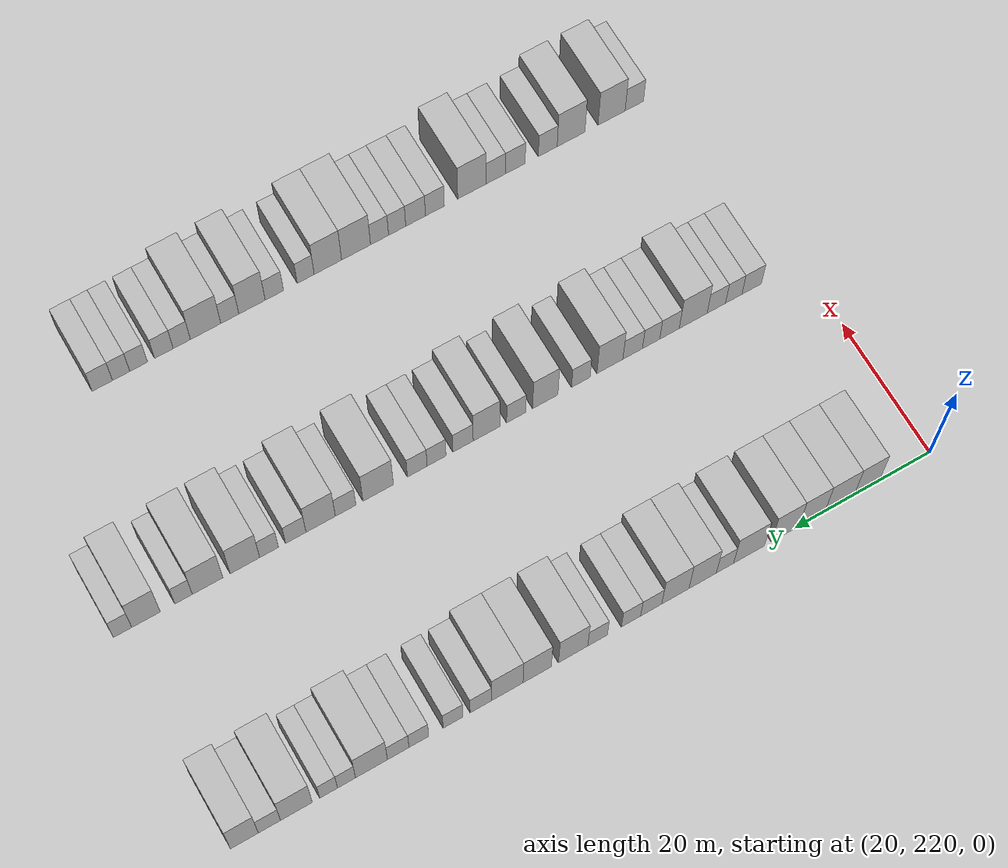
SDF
<sdf version="1.6">
 <world name="default">
  <model name="building_170">
   <static>1</static>
   <pose>25.0000 229.3970 0 0.000000 0.000000 0.000000</pose>
   <link name="link">
    <pose>0 0 4.50 0 0 0</pose>
    <collision name="collision"><geometry><box><size>10.0000 3.7548 9.0000</size></box></geometry></collision>
    <visual name="visual">
     <cast_shadows>0</cast_shadows>
     <geometry><box><size>10.0000 3.7548 9.0000</size></box></geometry>
     <material>
      <script>
       <uri>model://HANNAS_wall/materials/scripts</uri>
       <uri>model://HANNAS_wall/materials/textures</uri>
       <name>vrc/HANNAS_wall</name>
      </script>
     </material>
    </visual>
   </link>
  </model>
  <model name="building_171">
   <static>1</static>
   <pose>25.0000 233.4373 0 0.000000 0.000000 0.000000</pose>
   <link name="link">
    <pose>0 0 4.50 0 0 0</pose>
    <collision name="collision"><geometry><box><size>10.0000 4.3258 9.0000</size></box></geometry></collision>
    <visual name="visual">
     <cast_shadows>0</cast_shadows>
     <geometry><box><size>10.0000 4.3258 9.0000</size></box></geometry>
     <material>
      <script>
       <uri>model://HANNAS_wall/materials/scripts</uri>
       <uri>model://HANNAS_wall/materials/textures</uri>
       <name>vrc/HANNAS_wall</name>
      </script>
     </material>
    </visual>
   </link>
  </model>
  <model name="building_172">
   <static>1</static>
   <pose>25.0000 237.5197 0 0.000000 0.000000 0.000000</pose>
   <link name="link">
    <pose>0 0 4.50 0 0 0</pose>
    <collision name="collision"><geometry><box><size>10.0000 3.8388 9.0000</size></box></geometry></collision>
    <visual name="visual">
     <cast_shadows>0</cast_shadows>
     <geometry><box><size>10.0000 3.8388 9.0000</size></box></geometry>
     <material>
      <script>
       <uri>model://HANNAS_wall/materials/scripts</uri>
       <uri>model://HANNAS_wall/materials/textures</uri>
       <name>vrc/HANNAS_wall</name>
      </script>
     </material>
    </visual>
   </link>
  </model>
  <model name="building_173">
   <static>1</static>
   <pose>25.0000 241.4638 0 0.000000 0.000000 0.000000</pose>
   <link name="link">
    <pose>0 0 4.50 0 0 0</pose>
    <collision name="collision"><geometry><box><size>10.0000 4.0494 9.0000</size></box></geometry></collision>
    <visual name="visual">
     <cast_shadows>0</cast_shadows>
     <geometry><box><size>10.0000 4.0494 9.0000</size></box></geometry>
     <material>
      <script>
       <uri>model://HANNAS_wall/materials/scripts</uri>
       <uri>model://HANNAS_wall/materials/textures</uri>
       <name>vrc/HANNAS_wall</name>
      </script>
     </material>
    </visual>
   </link>
  </model>
  <model name="building_174">
   <static>1</static>
   <pose>25.0000 246.7360 0 0.000000 0.000000 0.000000</pose>
   <link name="link">
    <pose>0 0 4.50 0 0 0</pose>
    <collision name="collision"><geometry><box><size>10.0000 4.4951 9.0000</size></box></geometry></collision>
    <visual name="visual">
     <cast_shadows>0</cast_shadows>
     <geometry><box><size>10.0000 4.4951 9.0000</size></box></geometry>
     <material>
      <script>
       <uri>model://HANNAS_wall/materials/scripts</uri>
       <uri>model://HANNAS_wall/materials/textures</uri>
       <name>vrc/HANNAS_wall</name>
      </script>
     </material>
    </visual>
   </link>
  </model>
  <model name="building_175">
   <static>1</static>
   <pose>25.0000 250.2356 0 0.000000 0.000000 0.000000</pose>
   <link name="link">
    <pose>0 0 3.00 0 0 0</pose>
    <collision name="collision"><geometry><box><size>10.0000 2.5039 6.0000</size></box></geometry></collision>
    <visual name="visual">
     <cast_shadows>0</cast_shadows>
     <geometry><box><size>10.0000 2.5039 6.0000</size></box></geometry>
     <material>
      <script>
       <uri>model://HANNAS_wall/materials/scripts</uri>
       <uri>model://HANNAS_wall/materials/textures</uri>
       <name>vrc/HANNAS_wall</name>
      </script>
     </material>
    </visual>
   </link>
  </model>
  <model name="building_176">
   <static>1</static>
   <pose>25.0000 253.4740 0 0.000000 0.000000 0.000000</pose>
   <link name="link">
    <pose>0 0 4.50 0 0 0</pose>
    <collision name="collision"><geometry><box><size>10.0000 3.9730 9.0000</size></box></geometry></collision>
    <visual name="visual">
     <cast_shadows>0</cast_shadows>
     <geometry><box><size>10.0000 3.9730 9.0000</size></box></geometry>
     <material>
      <script>
       <uri>model://HANNAS_wall/materials/scripts</uri>
       <uri>model://HANNAS_wall/materials/textures</uri>
       <name>vrc/HANNAS_wall</name>
      </script>
     </material>
    </visual>
   </link>
  </model>
  <model name="building_177">
   <static>1</static>
   <pose>25.0000 257.4222 0 0.000000 0.000000 0.000000</pose>
   <link name="link">
    <pose>0 0 4.50 0 0 0</pose>
    <collision name="collision"><geometry><box><size>10.0000 3.9232 9.0000</size></box></geometry></collision>
    <visual name="visual">
     <cast_shadows>0</cast_shadows>
     <geometry><box><size>10.0000 3.9232 9.0000</size></box></geometry>
     <material>
      <script>
       <uri>model://HANNAS_wall/materials/scripts</uri>
       <uri>model://HANNAS_wall/materials/textures</uri>
       <name>vrc/HANNAS_wall</name>
      </script>
     </material>
    </visual>
   </link>
  </model>
  <model name="building_178">
   <static>1</static>
   <pose>25.0000 260.8836 0 0.000000 0.000000 0.000000</pose>
   <link name="link">
    <pose>0 0 3.00 0 0 0</pose>
    <collision name="collision"><geometry><box><size>10.0000 2.9997 6.0000</size></box></geometry></collision>
    <visual name="visual">
     <cast_shadows>0</cast_shadows>
     <geometry><box><size>10.0000 2.9997 6.0000</size></box></geometry>
     <material>
      <script>
       <uri>model://HANNAS_wall/materials/scripts</uri>
       <uri>model://HANNAS_wall/materials/textures</uri>
       <name>vrc/HANNAS_wall</name>
      </script>
     </material>
    </visual>
   </link>
  </model>
  <model name="building_179">
   <static>1</static>
   <pose>25.0000 263.7631 0 0.000000 0.000000 0.000000</pose>
   <link name="link">
    <pose>0 0 3.00 0 0 0</pose>
    <collision name="collision"><geometry><box><size>10.0000 2.7592 6.0000</size></box></geometry></collision>
    <visual name="visual">
     <cast_shadows>0</cast_shadows>
     <geometry><box><size>10.0000 2.7592 6.0000</size></box></geometry>
     <material>
      <script>
       <uri>model://HANNAS_wall/materials/scripts</uri>
       <uri>model://HANNAS_wall/materials/textures</uri>
       <name>vrc/HANNAS_wall</name>
      </script>
     </material>
    </visual>
   </link>
  </model>
  <model name="building_180">
   <static>1</static>
   <pose>25.0000 268.5357 0 0.000000 0.000000 0.000000</pose>
   <link name="link">
    <pose>0 0 3.00 0 0 0</pose>
    <collision name="collision"><geometry><box><size>10.0000 2.7862 6.0000</size></box></geometry></collision>
    <visual name="visual">
     <cast_shadows>0</cast_shadows>
     <geometry><box><size>10.0000 2.7862 6.0000</size></box></geometry>
     <material>
      <script>
       <uri>model://HANNAS_wall/materials/scripts</uri>
       <uri>model://HANNAS_wall/materials/textures</uri>
       <name>vrc/HANNAS_wall</name>
      </script>
     </material>
    </visual>
   </link>
  </model>
  <model name="building_181">
   <static>1</static>
   <pose>25.0000 272.0042 0 0.000000 0.000000 0.000000</pose>
   <link name="link">
    <pose>0 0 4.50 0 0 0</pose>
    <collision name="collision"><geometry><box><size>10.0000 4.1507 9.0000</size></box></geometry></collision>
    <visual name="visual">
     <cast_shadows>0</cast_shadows>
     <geometry><box><size>10.0000 4.1507 9.0000</size></box></geometry>
     <material>
      <script>
       <uri>model://HANNAS_wall/materials/scripts</uri>
       <uri>model://HANNAS_wall/materials/textures</uri>
       <name>vrc/HANNAS_wall</name>
      </script>
     </material>
    </visual>
   </link>
  </model>
  <model name="building_182">
   <static>1</static>
   <pose>25.0000 277.0725 0 0.000000 0.000000 0.000000</pose>
   <link name="link">
    <pose>0 0 4.50 0 0 0</pose>
    <collision name="collision"><geometry><box><size>10.0000 3.9861 9.0000</size></box></geometry></collision>
    <visual name="visual">
     <cast_shadows>0</cast_shadows>
     <geometry><box><size>10.0000 3.9861 9.0000</size></box></geometry>
     <material>
      <script>
       <uri>model://HANNAS_wall/materials/scripts</uri>
       <uri>model://HANNAS_wall/materials/textures</uri>
       <name>vrc/HANNAS_wall</name>
      </script>
     </material>
    </visual>
   </link>
  </model>
  <model name="building_183">
   <static>1</static>
   <pose>25.0000 281.2721 0 0.000000 0.000000 0.000000</pose>
   <link name="link">
    <pose>0 0 4.50 0 0 0</pose>
    <collision name="collision"><geometry><box><size>10.0000 4.4130 9.0000</size></box></geometry></collision>
    <visual name="visual">
     <cast_shadows>0</cast_shadows>
     <geometry><box><size>10.0000 4.4130 9.0000</size></box></geometry>
     <material>
      <script>
       <uri>model://HANNAS_wall/materials/scripts</uri>
       <uri>model://HANNAS_wall/materials/textures</uri>
       <name>vrc/HANNAS_wall</name>
      </script>
     </material>
    </visual>
   </link>
  </model>
  <model name="building_184">
   <static>1</static>
   <pose>25.0000 284.9679 0 0.000000 0.000000 0.000000</pose>
   <link name="link">
    <pose>0 0 3.00 0 0 0</pose>
    <collision name="collision"><geometry><box><size>10.0000 2.9787 6.0000</size></box></geometry></collision>
    <visual name="visual">
     <cast_shadows>0</cast_shadows>
     <geometry><box><size>10.0000 2.9787 6.0000</size></box></geometry>
     <material>
      <script>
       <uri>model://HANNAS_wall/materials/scripts</uri>
       <uri>model://HANNAS_wall/materials/textures</uri>
       <name>vrc/HANNAS_wall</name>
      </script>
     </material>
    </visual>
   </link>
  </model>
  <model name="building_185">
   <static>1</static>
   <pose>25.0000 288.8315 0 0.000000 0.000000 0.000000</pose>
   <link name="link">
    <pose>0 0 3.00 0 0 0</pose>
    <collision name="collision"><geometry><box><size>10.0000 2.7484 6.0000</size></box></geometry></collision>
    <visual name="visual">
     <cast_shadows>0</cast_shadows>
     <geometry><box><size>10.0000 2.7484 6.0000</size></box></geometry>
     <material>
      <script>
       <uri>model://HANNAS_wall/materials/scripts</uri>
       <uri>model://HANNAS_wall/materials/textures</uri>
       <name>vrc/HANNAS_wall</name>
      </script>
     </material>
    </visual>
   </link>
  </model>
  <model name="building_186">
   <static>1</static>
   <pose>25.0000 293.5655 0 0.000000 0.000000 0.000000</pose>
   <link name="link">
    <pose>0 0 3.00 0 0 0</pose>
    <collision name="collision"><geometry><box><size>10.0000 2.7197 6.0000</size></box></geometry></collision>
    <visual name="visual">
     <cast_shadows>0</cast_shadows>
     <geometry><box><size>10.0000 2.7197 6.0000</size></box></geometry>
     <material>
      <script>
       <uri>model://HANNAS_wall/materials/scripts</uri>
       <uri>model://HANNAS_wall/materials/textures</uri>
       <name>vrc/HANNAS_wall</name>
      </script>
     </material>
    </visual>
   </link>
  </model>
  <model name="building_187">
   <static>1</static>
   <pose>25.0000 296.4082 0 0.000000 0.000000 0.000000</pose>
   <link name="link">
    <pose>0 0 3.00 0 0 0</pose>
    <collision name="collision"><geometry><box><size>10.0000 2.9657 6.0000</size></box></geometry></collision>
    <visual name="visual">
     <cast_shadows>0</cast_shadows>
     <geometry><box><size>10.0000 2.9657 6.0000</size></box></geometry>
     <material>
      <script>
       <uri>model://HANNAS_wall/materials/scripts</uri>
       <uri>model://HANNAS_wall/materials/textures</uri>
       <name>vrc/HANNAS_wall</name>
      </script>
     </material>
    </visual>
   </link>
  </model>
  <model name="building_188">
   <static>1</static>
   <pose>25.0000 300.0776 0 0.000000 0.000000 0.000000</pose>
   <link name="link">
    <pose>0 0 4.50 0 0 0</pose>
    <collision name="collision"><geometry><box><size>10.0000 4.3730 9.0000</size></box></geometry></collision>
    <visual name="visual">
     <cast_shadows>0</cast_shadows>
     <geometry><box><size>10.0000 4.3730 9.0000</size></box></geometry>
     <material>
      <script>
       <uri>model://HANNAS_wall/materials/scripts</uri>
       <uri>model://HANNAS_wall/materials/textures</uri>
       <name>vrc/HANNAS_wall</name>
      </script>
     </material>
    </visual>
   </link>
  </model>
  <model name="building_189">
   <static>1</static>
   <pose>25.0000 303.4990 0 0.000000 0.000000 0.000000</pose>
   <link name="link">
    <pose>0 0 3.00 0 0 0</pose>
    <collision name="collision"><geometry><box><size>10.0000 2.4698 6.0000</size></box></geometry></collision>
    <visual name="visual">
     <cast_shadows>0</cast_shadows>
     <geometry><box><size>10.0000 2.4698 6.0000</size></box></geometry>
     <material>
      <script>
       <uri>model://HANNAS_wall/materials/scripts</uri>
       <uri>model://HANNAS_wall/materials/textures</uri>
       <name>vrc/HANNAS_wall</name>
      </script>
     </material>
    </visual>
   </link>
  </model>
  <model name="building_190">
   <static>1</static>
   <pose>25.0000 305.9430 0 0.000000 0.000000 0.000000</pose>
   <link name="link">
    <pose>0 0 3.00 0 0 0</pose>
    <collision name="collision"><geometry><box><size>10.0000 2.4181 6.0000</size></box></geometry></collision>
    <visual name="visual">
     <cast_shadows>0</cast_shadows>
     <geometry><box><size>10.0000 2.4181 6.0000</size></box></geometry>
     <material>
      <script>
       <uri>model://HANNAS_wall/materials/scripts</uri>
       <uri>model://HANNAS_wall/materials/textures</uri>
       <name>vrc/HANNAS_wall</name>
      </script>
     </material>
    </visual>
   </link>
  </model>
  <model name="building_191">
   <static>1</static>
   <pose>25.0000 310.3020 0 0.000000 0.000000 0.000000</pose>
   <link name="link">
    <pose>0 0 4.50 0 0 0</pose>
    <collision name="collision"><geometry><box><size>10.0000 4.2999 9.0000</size></box></geometry></collision>
    <visual name="visual">
     <cast_shadows>0</cast_shadows>
     <geometry><box><size>10.0000 4.2999 9.0000</size></box></geometry>
     <material>
      <script>
       <uri>model://HANNAS_wall/materials/scripts</uri>
       <uri>model://HANNAS_wall/materials/textures</uri>
       <name>vrc/HANNAS_wall</name>
      </script>
     </material>
    </visual>
   </link>
  </model>
  <model name="building_192">
   <static>1</static>
   <pose>25.0000 313.9498 0 0.000000 0.000000 0.000000</pose>
   <link name="link">
    <pose>0 0 3.00 0 0 0</pose>
    <collision name="collision"><geometry><box><size>10.0000 2.9958 6.0000</size></box></geometry></collision>
    <visual name="visual">
     <cast_shadows>0</cast_shadows>
     <geometry><box><size>10.0000 2.9958 6.0000</size></box></geometry>
     <material>
      <script>
       <uri>model://HANNAS_wall/materials/scripts</uri>
       <uri>model://HANNAS_wall/materials/textures</uri>
       <name>vrc/HANNAS_wall</name>
      </script>
     </material>
    </visual>
   </link>
  </model>
  <model name="building_193">
   <static>1</static>
   <pose>25.0000 317.3258 0 0.000000 0.000000 0.000000</pose>
   <link name="link">
    <pose>0 0 4.50 0 0 0</pose>
    <collision name="collision"><geometry><box><size>10.0000 3.7562 9.0000</size></box></geometry></collision>
    <visual name="visual">
     <cast_shadows>0</cast_shadows>
     <geometry><box><size>10.0000 3.7562 9.0000</size></box></geometry>
     <material>
      <script>
       <uri>model://HANNAS_wall/materials/scripts</uri>
       <uri>model://HANNAS_wall/materials/textures</uri>
       <name>vrc/HANNAS_wall</name>
      </script>
     </material>
    </visual>
   </link>
  </model>
  <model name="building_403">
   <static>1</static>
   <pose>55.0000 227.4040 0 0.000000 0.000000 0.000000</pose>
   <link name="link">
    <pose>0 0 3.00 0 0 0</pose>
    <collision name="collision"><geometry><box><size>10.0000 2.9545 6.0000</size></box></geometry></collision>
    <visual name="visual">
     <cast_shadows>0</cast_shadows>
     <geometry><box><size>10.0000 2.9545 6.0000</size></box></geometry>
     <material>
      <script>
       <uri>model://HANNAS_wall/materials/scripts</uri>
       <uri>model://HANNAS_wall/materials/textures</uri>
       <name>vrc/HANNAS_wall</name>
      </script>
     </material>
    </visual>
   </link>
  </model>
  <model name="building_404">
   <static>1</static>
   <pose>55.0000 230.1185 0 0.000000 0.000000 0.000000</pose>
   <link name="link">
    <pose>0 0 3.00 0 0 0</pose>
    <collision name="collision"><geometry><box><size>10.0000 2.4743 6.0000</size></box></geometry></collision>
    <visual name="visual">
     <cast_shadows>0</cast_shadows>
     <geometry><box><size>10.0000 2.4743 6.0000</size></box></geometry>
     <material>
      <script>
       <uri>model://HANNAS_wall/materials/scripts</uri>
       <uri>model://HANNAS_wall/materials/textures</uri>
       <name>vrc/HANNAS_wall</name>
      </script>
     </material>
    </visual>
   </link>
  </model>
  <model name="building_405">
   <static>1</static>
   <pose>55.0000 232.7427 0 0.000000 0.000000 0.000000</pose>
   <link name="link">
    <pose>0 0 3.00 0 0 0</pose>
    <collision name="collision"><geometry><box><size>10.0000 2.7742 6.0000</size></box></geometry></collision>
    <visual name="visual">
     <cast_shadows>0</cast_shadows>
     <geometry><box><size>10.0000 2.7742 6.0000</size></box></geometry>
     <material>
      <script>
       <uri>model://HANNAS_wall/materials/scripts</uri>
       <uri>model://HANNAS_wall/materials/textures</uri>
       <name>vrc/HANNAS_wall</name>
      </script>
     </material>
    </visual>
   </link>
  </model>
  <model name="building_406">
   <static>1</static>
   <pose>55.0000 236.2222 0 0.000000 0.000000 0.000000</pose>
   <link name="link">
    <pose>0 0 4.50 0 0 0</pose>
    <collision name="collision"><geometry><box><size>10.0000 4.1849 9.0000</size></box></geometry></collision>
    <visual name="visual">
     <cast_shadows>0</cast_shadows>
     <geometry><box><size>10.0000 4.1849 9.0000</size></box></geometry>
     <material>
      <script>
       <uri>model://HANNAS_wall/materials/scripts</uri>
       <uri>model://HANNAS_wall/materials/textures</uri>
       <name>vrc/HANNAS_wall</name>
      </script>
     </material>
    </visual>
   </link>
  </model>
  <model name="building_407">
   <static>1</static>
   <pose>55.0000 239.7768 0 0.000000 0.000000 0.000000</pose>
   <link name="link">
    <pose>0 0 3.00 0 0 0</pose>
    <collision name="collision"><geometry><box><size>10.0000 2.9243 6.0000</size></box></geometry></collision>
    <visual name="visual">
     <cast_shadows>0</cast_shadows>
     <geometry><box><size>10.0000 2.9243 6.0000</size></box></geometry>
     <material>
      <script>
       <uri>model://HANNAS_wall/materials/scripts</uri>
       <uri>model://HANNAS_wall/materials/textures</uri>
       <name>vrc/HANNAS_wall</name>
      </script>
     </material>
    </visual>
   </link>
  </model>
  <model name="building_408">
   <static>1</static>
   <pose>55.0000 242.5268 0 0.000000 0.000000 0.000000</pose>
   <link name="link">
    <pose>0 0 3.00 0 0 0</pose>
    <collision name="collision"><geometry><box><size>10.0000 2.5758 6.0000</size></box></geometry></collision>
    <visual name="visual">
     <cast_shadows>0</cast_shadows>
     <geometry><box><size>10.0000 2.5758 6.0000</size></box></geometry>
     <material>
      <script>
       <uri>model://HANNAS_wall/materials/scripts</uri>
       <uri>model://HANNAS_wall/materials/textures</uri>
       <name>vrc/HANNAS_wall</name>
      </script>
     </material>
    </visual>
   </link>
  </model>
  <model name="building_409">
   <static>1</static>
   <pose>55.0000 245.2688 0 0.000000 0.000000 0.000000</pose>
   <link name="link">
    <pose>0 0 3.00 0 0 0</pose>
    <collision name="collision"><geometry><box><size>10.0000 2.9082 6.0000</size></box></geometry></collision>
    <visual name="visual">
     <cast_shadows>0</cast_shadows>
     <geometry><box><size>10.0000 2.9082 6.0000</size></box></geometry>
     <material>
      <script>
       <uri>model://HANNAS_wall/materials/scripts</uri>
       <uri>model://HANNAS_wall/materials/textures</uri>
       <name>vrc/HANNAS_wall</name>
      </script>
     </material>
    </visual>
   </link>
  </model>
  <model name="building_410">
   <static>1</static>
   <pose>55.0000 248.6475 0 0.000000 0.000000 0.000000</pose>
   <link name="link">
    <pose>0 0 4.50 0 0 0</pose>
    <collision name="collision"><geometry><box><size>10.0000 3.8491 9.0000</size></box></geometry></collision>
    <visual name="visual">
     <cast_shadows>0</cast_shadows>
     <geometry><box><size>10.0000 3.8491 9.0000</size></box></geometry>
     <material>
      <script>
       <uri>model://HANNAS_wall/materials/scripts</uri>
       <uri>model://HANNAS_wall/materials/textures</uri>
       <name>vrc/HANNAS_wall</name>
      </script>
     </material>
    </visual>
   </link>
  </model>
  <model name="building_411">
   <static>1</static>
   <pose>55.0000 252.9412 0 0.000000 0.000000 0.000000</pose>
   <link name="link">
    <pose>0 0 3.00 0 0 0</pose>
    <collision name="collision"><geometry><box><size>10.0000 2.7383 6.0000</size></box></geometry></collision>
    <visual name="visual">
     <cast_shadows>0</cast_shadows>
     <geometry><box><size>10.0000 2.7383 6.0000</size></box></geometry>
     <material>
      <script>
       <uri>model://HANNAS_wall/materials/scripts</uri>
       <uri>model://HANNAS_wall/materials/textures</uri>
       <name>vrc/HANNAS_wall</name>
      </script>
     </material>
    </visual>
   </link>
  </model>
  <model name="building_412">
   <static>1</static>
   <pose>55.0000 258.1676 0 0.000000 0.000000 0.000000</pose>
   <link name="link">
    <pose>0 0 4.50 0 0 0</pose>
    <collision name="collision"><geometry><box><size>10.0000 3.7144 9.0000</size></box></geometry></collision>
    <visual name="visual">
     <cast_shadows>0</cast_shadows>
     <geometry><box><size>10.0000 3.7144 9.0000</size></box></geometry>
     <material>
      <script>
       <uri>model://HANNAS_wall/materials/scripts</uri>
       <uri>model://HANNAS_wall/materials/textures</uri>
       <name>vrc/HANNAS_wall</name>
      </script>
     </material>
    </visual>
   </link>
  </model>
  <model name="building_413">
   <static>1</static>
   <pose>55.0000 262.4167 0 0.000000 0.000000 0.000000</pose>
   <link name="link">
    <pose>0 0 3.00 0 0 0</pose>
    <collision name="collision"><geometry><box><size>10.0000 2.7839 6.0000</size></box></geometry></collision>
    <visual name="visual">
     <cast_shadows>0</cast_shadows>
     <geometry><box><size>10.0000 2.7839 6.0000</size></box></geometry>
     <material>
      <script>
       <uri>model://HANNAS_wall/materials/scripts</uri>
       <uri>model://HANNAS_wall/materials/textures</uri>
       <name>vrc/HANNAS_wall</name>
      </script>
     </material>
    </visual>
   </link>
  </model>
  <model name="building_414">
   <static>1</static>
   <pose>55.0000 266.7337 0 0.000000 0.000000 0.000000</pose>
   <link name="link">
    <pose>0 0 4.50 0 0 0</pose>
    <collision name="collision"><geometry><box><size>10.0000 3.8502 9.0000</size></box></geometry></collision>
    <visual name="visual">
     <cast_shadows>0</cast_shadows>
     <geometry><box><size>10.0000 3.8502 9.0000</size></box></geometry>
     <material>
      <script>
       <uri>model://HANNAS_wall/materials/scripts</uri>
       <uri>model://HANNAS_wall/materials/textures</uri>
       <name>vrc/HANNAS_wall</name>
      </script>
     </material>
    </visual>
   </link>
  </model>
  <model name="building_415">
   <static>1</static>
   <pose>55.0000 270.1242 0 0.000000 0.000000 0.000000</pose>
   <link name="link">
    <pose>0 0 3.00 0 0 0</pose>
    <collision name="collision"><geometry><box><size>10.0000 2.9307 6.0000</size></box></geometry></collision>
    <visual name="visual">
     <cast_shadows>0</cast_shadows>
     <geometry><box><size>10.0000 2.9307 6.0000</size></box></geometry>
     <material>
      <script>
       <uri>model://HANNAS_wall/materials/scripts</uri>
       <uri>model://HANNAS_wall/materials/textures</uri>
       <name>vrc/HANNAS_wall</name>
      </script>
     </material>
    </visual>
   </link>
  </model>
  <model name="building_416">
   <static>1</static>
   <pose>55.0000 273.9473 0 0.000000 0.000000 0.000000</pose>
   <link name="link">
    <pose>0 0 3.00 0 0 0</pose>
    <collision name="collision"><geometry><box><size>10.0000 2.7156 6.0000</size></box></geometry></collision>
    <visual name="visual">
     <cast_shadows>0</cast_shadows>
     <geometry><box><size>10.0000 2.7156 6.0000</size></box></geometry>
     <material>
      <script>
       <uri>model://HANNAS_wall/materials/scripts</uri>
       <uri>model://HANNAS_wall/materials/textures</uri>
       <name>vrc/HANNAS_wall</name>
      </script>
     </material>
    </visual>
   </link>
  </model>
  <model name="building_417">
   <static>1</static>
   <pose>55.0000 276.7246 0 0.000000 0.000000 0.000000</pose>
   <link name="link">
    <pose>0 0 3.00 0 0 0</pose>
    <collision name="collision"><geometry><box><size>10.0000 2.8389 6.0000</size></box></geometry></collision>
    <visual name="visual">
     <cast_shadows>0</cast_shadows>
     <geometry><box><size>10.0000 2.8389 6.0000</size></box></geometry>
     <material>
      <script>
       <uri>model://HANNAS_wall/materials/scripts</uri>
       <uri>model://HANNAS_wall/materials/textures</uri>
       <name>vrc/HANNAS_wall</name>
      </script>
     </material>
    </visual>
   </link>
  </model>
  <model name="building_418">
   <static>1</static>
   <pose>55.0000 282.3194 0 0.000000 0.000000 0.000000</pose>
   <link name="link">
    <pose>0 0 4.50 0 0 0</pose>
    <collision name="collision"><geometry><box><size>10.0000 4.3508 9.0000</size></box></geometry></collision>
    <visual name="visual">
     <cast_shadows>0</cast_shadows>
     <geometry><box><size>10.0000 4.3508 9.0000</size></box></geometry>
     <material>
      <script>
       <uri>model://HANNAS_wall/materials/scripts</uri>
       <uri>model://HANNAS_wall/materials/textures</uri>
       <name>vrc/HANNAS_wall</name>
      </script>
     </material>
    </visual>
   </link>
  </model>
  <model name="building_419">
   <static>1</static>
   <pose>55.0000 286.9510 0 0.000000 0.000000 0.000000</pose>
   <link name="link">
    <pose>0 0 3.00 0 0 0</pose>
    <collision name="collision"><geometry><box><size>10.0000 2.9124 6.0000</size></box></geometry></collision>
    <visual name="visual">
     <cast_shadows>0</cast_shadows>
     <geometry><box><size>10.0000 2.9124 6.0000</size></box></geometry>
     <material>
      <script>
       <uri>model://HANNAS_wall/materials/scripts</uri>
       <uri>model://HANNAS_wall/materials/textures</uri>
       <name>vrc/HANNAS_wall</name>
      </script>
     </material>
    </visual>
   </link>
  </model>
  <model name="building_420">
   <static>1</static>
   <pose>55.0000 290.4823 0 0.000000 0.000000 0.000000</pose>
   <link name="link">
    <pose>0 0 4.50 0 0 0</pose>
    <collision name="collision"><geometry><box><size>10.0000 4.1502 9.0000</size></box></geometry></collision>
    <visual name="visual">
     <cast_shadows>0</cast_shadows>
     <geometry><box><size>10.0000 4.1502 9.0000</size></box></geometry>
     <material>
      <script>
       <uri>model://HANNAS_wall/materials/scripts</uri>
       <uri>model://HANNAS_wall/materials/textures</uri>
       <name>vrc/HANNAS_wall</name>
      </script>
     </material>
    </visual>
   </link>
  </model>
  <model name="building_421">
   <static>1</static>
   <pose>55.0000 293.9936 0 0.000000 0.000000 0.000000</pose>
   <link name="link">
    <pose>0 0 3.00 0 0 0</pose>
    <collision name="collision"><geometry><box><size>10.0000 2.8724 6.0000</size></box></geometry></collision>
    <visual name="visual">
     <cast_shadows>0</cast_shadows>
     <geometry><box><size>10.0000 2.8724 6.0000</size></box></geometry>
     <material>
      <script>
       <uri>model://HANNAS_wall/materials/scripts</uri>
       <uri>model://HANNAS_wall/materials/textures</uri>
       <name>vrc/HANNAS_wall</name>
      </script>
     </material>
    </visual>
   </link>
  </model>
  <model name="building_422">
   <static>1</static>
   <pose>55.0000 297.7446 0 0.000000 0.000000 0.000000</pose>
   <link name="link">
    <pose>0 0 3.00 0 0 0</pose>
    <collision name="collision"><geometry><box><size>10.0000 2.6297 6.0000</size></box></geometry></collision>
    <visual name="visual">
     <cast_shadows>0</cast_shadows>
     <geometry><box><size>10.0000 2.6297 6.0000</size></box></geometry>
     <material>
      <script>
       <uri>model://HANNAS_wall/materials/scripts</uri>
       <uri>model://HANNAS_wall/materials/textures</uri>
       <name>vrc/HANNAS_wall</name>
      </script>
     </material>
    </visual>
   </link>
  </model>
  <model name="building_423">
   <static>1</static>
   <pose>55.0000 301.1272 0 0.000000 0.000000 0.000000</pose>
   <link name="link">
    <pose>0 0 4.50 0 0 0</pose>
    <collision name="collision"><geometry><box><size>10.0000 4.1354 9.0000</size></box></geometry></collision>
    <visual name="visual">
     <cast_shadows>0</cast_shadows>
     <geometry><box><size>10.0000 4.1354 9.0000</size></box></geometry>
     <material>
      <script>
       <uri>model://HANNAS_wall/materials/scripts</uri>
       <uri>model://HANNAS_wall/materials/textures</uri>
       <name>vrc/HANNAS_wall</name>
      </script>
     </material>
    </visual>
   </link>
  </model>
  <model name="building_424">
   <static>1</static>
   <pose>55.0000 306.3180 0 0.000000 0.000000 0.000000</pose>
   <link name="link">
    <pose>0 0 4.50 0 0 0</pose>
    <collision name="collision"><geometry><box><size>10.0000 4.2461 9.0000</size></box></geometry></collision>
    <visual name="visual">
     <cast_shadows>0</cast_shadows>
     <geometry><box><size>10.0000 4.2461 9.0000</size></box></geometry>
     <material>
      <script>
       <uri>model://HANNAS_wall/materials/scripts</uri>
       <uri>model://HANNAS_wall/materials/textures</uri>
       <name>vrc/HANNAS_wall</name>
      </script>
     </material>
    </visual>
   </link>
  </model>
  <model name="building_425">
   <static>1</static>
   <pose>55.0000 309.6576 0 0.000000 0.000000 0.000000</pose>
   <link name="link">
    <pose>0 0 3.00 0 0 0</pose>
    <collision name="collision"><geometry><box><size>10.0000 2.4330 6.0000</size></box></geometry></collision>
    <visual name="visual">
     <cast_shadows>0</cast_shadows>
     <geometry><box><size>10.0000 2.4330 6.0000</size></box></geometry>
     <material>
      <script>
       <uri>model://HANNAS_wall/materials/scripts</uri>
       <uri>model://HANNAS_wall/materials/textures</uri>
       <name>vrc/HANNAS_wall</name>
      </script>
     </material>
    </visual>
   </link>
  </model>
  <model name="building_426">
   <static>1</static>
   <pose>55.0000 314.8331 0 0.000000 0.000000 0.000000</pose>
   <link name="link">
    <pose>0 0 4.50 0 0 0</pose>
    <collision name="collision"><geometry><box><size>10.0000 3.9181 9.0000</size></box></geometry></collision>
    <visual name="visual">
     <cast_shadows>0</cast_shadows>
     <geometry><box><size>10.0000 3.9181 9.0000</size></box></geometry>
     <material>
      <script>
       <uri>model://HANNAS_wall/materials/scripts</uri>
       <uri>model://HANNAS_wall/materials/textures</uri>
       <name>vrc/HANNAS_wall</name>
      </script>
     </material>
    </visual>
   </link>
  </model>
  <model name="building_427">
   <static>1</static>
   <pose>55.0000 318.0505 0 0.000000 0.000000 0.000000</pose>
   <link name="link">
    <pose>0 0 3.00 0 0 0</pose>
    <collision name="collision"><geometry><box><size>10.0000 2.5168 6.0000</size></box></geometry></collision>
    <visual name="visual">
     <cast_shadows>0</cast_shadows>
     <geometry><box><size>10.0000 2.5168 6.0000</size></box></geometry>
     <material>
      <script>
       <uri>model://HANNAS_wall/materials/scripts</uri>
       <uri>model://HANNAS_wall/materials/textures</uri>
       <name>vrc/HANNAS_wall</name>
      </script>
     </material>
    </visual>
   </link>
  </model>
  <model name="building_624">
   <static>1</static>
   <pose>85.0000 226.7602 0 0.000000 0.000000 0.000000</pose>
   <link name="link">
    <pose>0 0 3.00 0 0 0</pose>
    <collision name="collision"><geometry><box><size>10.0000 2.8246 6.0000</size></box></geometry></collision>
    <visual name="visual">
     <cast_shadows>0</cast_shadows>
     <geometry><box><size>10.0000 2.8246 6.0000</size></box></geometry>
     <material>
      <script>
       <uri>model://HANNAS_wall/materials/scripts</uri>
       <uri>model://HANNAS_wall/materials/textures</uri>
       <name>vrc/HANNAS_wall</name>
      </script>
     </material>
    </visual>
   </link>
  </model>
  <model name="building_625">
   <static>1</static>
   <pose>85.0000 230.2571 0 0.000000 0.000000 0.000000</pose>
   <link name="link">
    <pose>0 0 4.50 0 0 0</pose>
    <collision name="collision"><geometry><box><size>10.0000 4.1691 9.0000</size></box></geometry></collision>
    <visual name="visual">
     <cast_shadows>0</cast_shadows>
     <geometry><box><size>10.0000 4.1691 9.0000</size></box></geometry>
     <material>
      <script>
       <uri>model://HANNAS_wall/materials/scripts</uri>
       <uri>model://HANNAS_wall/materials/textures</uri>
       <name>vrc/HANNAS_wall</name>
      </script>
     </material>
    </visual>
   </link>
  </model>
  <model name="building_626">
   <static>1</static>
   <pose>85.0000 236.4627 0 0.000000 0.000000 0.000000</pose>
   <link name="link">
    <pose>0 0 4.50 0 0 0</pose>
    <collision name="collision"><geometry><box><size>10.0000 4.2421 9.0000</size></box></geometry></collision>
    <visual name="visual">
     <cast_shadows>0</cast_shadows>
     <geometry><box><size>10.0000 4.2421 9.0000</size></box></geometry>
     <material>
      <script>
       <uri>model://HANNAS_wall/materials/scripts</uri>
       <uri>model://HANNAS_wall/materials/textures</uri>
       <name>vrc/HANNAS_wall</name>
      </script>
     </material>
    </visual>
   </link>
  </model>
  <model name="building_627">
   <static>1</static>
   <pose>85.0000 240.0195 0 0.000000 0.000000 0.000000</pose>
   <link name="link">
    <pose>0 0 3.00 0 0 0</pose>
    <collision name="collision"><geometry><box><size>10.0000 2.8715 6.0000</size></box></geometry></collision>
    <visual name="visual">
     <cast_shadows>0</cast_shadows>
     <geometry><box><size>10.0000 2.8715 6.0000</size></box></geometry>
     <material>
      <script>
       <uri>model://HANNAS_wall/materials/scripts</uri>
       <uri>model://HANNAS_wall/materials/textures</uri>
       <name>vrc/HANNAS_wall</name>
      </script>
     </material>
    </visual>
   </link>
  </model>
  <model name="building_628">
   <static>1</static>
   <pose>85.0000 244.9456 0 0.000000 0.000000 0.000000</pose>
   <link name="link">
    <pose>0 0 3.00 0 0 0</pose>
    <collision name="collision"><geometry><box><size>10.0000 2.9807 6.0000</size></box></geometry></collision>
    <visual name="visual">
     <cast_shadows>0</cast_shadows>
     <geometry><box><size>10.0000 2.9807 6.0000</size></box></geometry>
     <material>
      <script>
       <uri>model://HANNAS_wall/materials/scripts</uri>
       <uri>model://HANNAS_wall/materials/textures</uri>
       <name>vrc/HANNAS_wall</name>
      </script>
     </material>
    </visual>
   </link>
  </model>
  <model name="building_629">
   <static>1</static>
   <pose>85.0000 247.8872 0 0.000000 0.000000 0.000000</pose>
   <link name="link">
    <pose>0 0 3.00 0 0 0</pose>
    <collision name="collision"><geometry><box><size>10.0000 2.9024 6.0000</size></box></geometry></collision>
    <visual name="visual">
     <cast_shadows>0</cast_shadows>
     <geometry><box><size>10.0000 2.9024 6.0000</size></box></geometry>
     <material>
      <script>
       <uri>model://HANNAS_wall/materials/scripts</uri>
       <uri>model://HANNAS_wall/materials/textures</uri>
       <name>vrc/HANNAS_wall</name>
      </script>
     </material>
    </visual>
   </link>
  </model>
  <model name="building_630">
   <static>1</static>
   <pose>85.0000 251.4788 0 0.000000 0.000000 0.000000</pose>
   <link name="link">
    <pose>0 0 4.50 0 0 0</pose>
    <collision name="collision"><geometry><box><size>10.0000 4.2809 9.0000</size></box></geometry></collision>
    <visual name="visual">
     <cast_shadows>0</cast_shadows>
     <geometry><box><size>10.0000 4.2809 9.0000</size></box></geometry>
     <material>
      <script>
       <uri>model://HANNAS_wall/materials/scripts</uri>
       <uri>model://HANNAS_wall/materials/textures</uri>
       <name>vrc/HANNAS_wall</name>
      </script>
     </material>
    </visual>
   </link>
  </model>
  <model name="building_631">
   <static>1</static>
   <pose>85.0000 257.0335 0 0.000000 0.000000 0.000000</pose>
   <link name="link">
    <pose>0 0 3.00 0 0 0</pose>
    <collision name="collision"><geometry><box><size>10.0000 2.8284 6.0000</size></box></geometry></collision>
    <visual name="visual">
     <cast_shadows>0</cast_shadows>
     <geometry><box><size>10.0000 2.8284 6.0000</size></box></geometry>
     <material>
      <script>
       <uri>model://HANNAS_wall/materials/scripts</uri>
       <uri>model://HANNAS_wall/materials/textures</uri>
       <name>vrc/HANNAS_wall</name>
      </script>
     </material>
    </visual>
   </link>
  </model>
  <model name="building_632">
   <static>1</static>
   <pose>85.0000 259.9150 0 0.000000 0.000000 0.000000</pose>
   <link name="link">
    <pose>0 0 3.00 0 0 0</pose>
    <collision name="collision"><geometry><box><size>10.0000 2.9346 6.0000</size></box></geometry></collision>
    <visual name="visual">
     <cast_shadows>0</cast_shadows>
     <geometry><box><size>10.0000 2.9346 6.0000</size></box></geometry>
     <material>
      <script>
       <uri>model://HANNAS_wall/materials/scripts</uri>
       <uri>model://HANNAS_wall/materials/textures</uri>
       <name>vrc/HANNAS_wall</name>
      </script>
     </material>
    </visual>
   </link>
  </model>
  <model name="building_633">
   <static>1</static>
   <pose>85.0000 262.6561 0 0.000000 0.000000 0.000000</pose>
   <link name="link">
    <pose>0 0 3.00 0 0 0</pose>
    <collision name="collision"><geometry><box><size>10.0000 2.5477 6.0000</size></box></geometry></collision>
    <visual name="visual">
     <cast_shadows>0</cast_shadows>
     <geometry><box><size>10.0000 2.5477 6.0000</size></box></geometry>
     <material>
      <script>
       <uri>model://HANNAS_wall/materials/scripts</uri>
       <uri>model://HANNAS_wall/materials/textures</uri>
       <name>vrc/HANNAS_wall</name>
      </script>
     </material>
    </visual>
   </link>
  </model>
  <model name="building_634">
   <static>1</static>
   <pose>85.0000 265.2674 0 0.000000 0.000000 0.000000</pose>
   <link name="link">
    <pose>0 0 3.00 0 0 0</pose>
    <collision name="collision"><geometry><box><size>10.0000 2.6750 6.0000</size></box></geometry></collision>
    <visual name="visual">
     <cast_shadows>0</cast_shadows>
     <geometry><box><size>10.0000 2.6750 6.0000</size></box></geometry>
     <material>
      <script>
       <uri>model://HANNAS_wall/materials/scripts</uri>
       <uri>model://HANNAS_wall/materials/textures</uri>
       <name>vrc/HANNAS_wall</name>
      </script>
     </material>
    </visual>
   </link>
  </model>
  <model name="building_635">
   <static>1</static>
   <pose>85.0000 268.7373 0 0.000000 0.000000 0.000000</pose>
   <link name="link">
    <pose>0 0 4.50 0 0 0</pose>
    <collision name="collision"><geometry><box><size>10.0000 4.2648 9.0000</size></box></geometry></collision>
    <visual name="visual">
     <cast_shadows>0</cast_shadows>
     <geometry><box><size>10.0000 4.2648 9.0000</size></box></geometry>
     <material>
      <script>
       <uri>model://HANNAS_wall/materials/scripts</uri>
       <uri>model://HANNAS_wall/materials/textures</uri>
       <name>vrc/HANNAS_wall</name>
      </script>
     </material>
    </visual>
   </link>
  </model>
  <model name="building_636">
   <static>1</static>
   <pose>85.0000 272.8847 0 0.000000 0.000000 0.000000</pose>
   <link name="link">
    <pose>0 0 4.50 0 0 0</pose>
    <collision name="collision"><geometry><box><size>10.0000 4.0299 9.0000</size></box></geometry></collision>
    <visual name="visual">
     <cast_shadows>0</cast_shadows>
     <geometry><box><size>10.0000 4.0299 9.0000</size></box></geometry>
     <material>
      <script>
       <uri>model://HANNAS_wall/materials/scripts</uri>
       <uri>model://HANNAS_wall/materials/textures</uri>
       <name>vrc/HANNAS_wall</name>
      </script>
     </material>
    </visual>
   </link>
  </model>
  <model name="building_637">
   <static>1</static>
   <pose>85.0000 276.1407 0 0.000000 0.000000 0.000000</pose>
   <link name="link">
    <pose>0 0 3.00 0 0 0</pose>
    <collision name="collision"><geometry><box><size>10.0000 2.4820 6.0000</size></box></geometry></collision>
    <visual name="visual">
     <cast_shadows>0</cast_shadows>
     <geometry><box><size>10.0000 2.4820 6.0000</size></box></geometry>
     <material>
      <script>
       <uri>model://HANNAS_wall/materials/scripts</uri>
       <uri>model://HANNAS_wall/materials/textures</uri>
       <name>vrc/HANNAS_wall</name>
      </script>
     </material>
    </visual>
   </link>
  </model>
  <model name="building_638">
   <static>1</static>
   <pose>85.0000 280.7164 0 0.000000 0.000000 0.000000</pose>
   <link name="link">
    <pose>0 0 3.00 0 0 0</pose>
    <collision name="collision"><geometry><box><size>10.0000 2.6694 6.0000</size></box></geometry></collision>
    <visual name="visual">
     <cast_shadows>0</cast_shadows>
     <geometry><box><size>10.0000 2.6694 6.0000</size></box></geometry>
     <material>
      <script>
       <uri>model://HANNAS_wall/materials/scripts</uri>
       <uri>model://HANNAS_wall/materials/textures</uri>
       <name>vrc/HANNAS_wall</name>
      </script>
     </material>
    </visual>
   </link>
  </model>
  <model name="building_639">
   <static>1</static>
   <pose>85.0000 283.9611 0 0.000000 0.000000 0.000000</pose>
   <link name="link">
    <pose>0 0 4.50 0 0 0</pose>
    <collision name="collision"><geometry><box><size>10.0000 3.8201 9.0000</size></box></geometry></collision>
    <visual name="visual">
     <cast_shadows>0</cast_shadows>
     <geometry><box><size>10.0000 3.8201 9.0000</size></box></geometry>
     <material>
      <script>
       <uri>model://HANNAS_wall/materials/scripts</uri>
       <uri>model://HANNAS_wall/materials/textures</uri>
       <name>vrc/HANNAS_wall</name>
      </script>
     </material>
    </visual>
   </link>
  </model>
  <model name="building_640">
   <static>1</static>
   <pose>85.0000 287.1791 0 0.000000 0.000000 0.000000</pose>
   <link name="link">
    <pose>0 0 3.00 0 0 0</pose>
    <collision name="collision"><geometry><box><size>10.0000 2.6158 6.0000</size></box></geometry></collision>
    <visual name="visual">
     <cast_shadows>0</cast_shadows>
     <geometry><box><size>10.0000 2.6158 6.0000</size></box></geometry>
     <material>
      <script>
       <uri>model://HANNAS_wall/materials/scripts</uri>
       <uri>model://HANNAS_wall/materials/textures</uri>
       <name>vrc/HANNAS_wall</name>
      </script>
     </material>
    </visual>
   </link>
  </model>
  <model name="building_641">
   <static>1</static>
   <pose>85.0000 290.6804 0 0.000000 0.000000 0.000000</pose>
   <link name="link">
    <pose>0 0 4.50 0 0 0</pose>
    <collision name="collision"><geometry><box><size>10.0000 4.3870 9.0000</size></box></geometry></collision>
    <visual name="visual">
     <cast_shadows>0</cast_shadows>
     <geometry><box><size>10.0000 4.3870 9.0000</size></box></geometry>
     <material>
      <script>
       <uri>model://HANNAS_wall/materials/scripts</uri>
       <uri>model://HANNAS_wall/materials/textures</uri>
       <name>vrc/HANNAS_wall</name>
      </script>
     </material>
    </visual>
   </link>
  </model>
  <model name="building_642">
   <static>1</static>
   <pose>85.0000 294.1108 0 0.000000 0.000000 0.000000</pose>
   <link name="link">
    <pose>0 0 3.00 0 0 0</pose>
    <collision name="collision"><geometry><box><size>10.0000 2.4737 6.0000</size></box></geometry></collision>
    <visual name="visual">
     <cast_shadows>0</cast_shadows>
     <geometry><box><size>10.0000 2.4737 6.0000</size></box></geometry>
     <material>
      <script>
       <uri>model://HANNAS_wall/materials/scripts</uri>
       <uri>model://HANNAS_wall/materials/textures</uri>
       <name>vrc/HANNAS_wall</name>
      </script>
     </material>
    </visual>
   </link>
  </model>
  <model name="building_643">
   <static>1</static>
   <pose>85.0000 296.6780 0 0.000000 0.000000 0.000000</pose>
   <link name="link">
    <pose>0 0 3.00 0 0 0</pose>
    <collision name="collision"><geometry><box><size>10.0000 2.6608 6.0000</size></box></geometry></collision>
    <visual name="visual">
     <cast_shadows>0</cast_shadows>
     <geometry><box><size>10.0000 2.6608 6.0000</size></box></geometry>
     <material>
      <script>
       <uri>model://HANNAS_wall/materials/scripts</uri>
       <uri>model://HANNAS_wall/materials/textures</uri>
       <name>vrc/HANNAS_wall</name>
      </script>
     </material>
    </visual>
   </link>
  </model>
  <model name="building_644">
   <static>1</static>
   <pose>85.0000 300.2771 0 0.000000 0.000000 0.000000</pose>
   <link name="link">
    <pose>0 0 3.00 0 0 0</pose>
    <collision name="collision"><geometry><box><size>10.0000 2.5373 6.0000</size></box></geometry></collision>
    <visual name="visual">
     <cast_shadows>0</cast_shadows>
     <geometry><box><size>10.0000 2.5373 6.0000</size></box></geometry>
     <material>
      <script>
       <uri>model://HANNAS_wall/materials/scripts</uri>
       <uri>model://HANNAS_wall/materials/textures</uri>
       <name>vrc/HANNAS_wall</name>
      </script>
     </material>
    </visual>
   </link>
  </model>
  <model name="building_645">
   <static>1</static>
   <pose>85.0000 302.7763 0 0.000000 0.000000 0.000000</pose>
   <link name="link">
    <pose>0 0 3.00 0 0 0</pose>
    <collision name="collision"><geometry><box><size>10.0000 2.4610 6.0000</size></box></geometry></collision>
    <visual name="visual">
     <cast_shadows>0</cast_shadows>
     <geometry><box><size>10.0000 2.4610 6.0000</size></box></geometry>
     <material>
      <script>
       <uri>model://HANNAS_wall/materials/scripts</uri>
       <uri>model://HANNAS_wall/materials/textures</uri>
       <name>vrc/HANNAS_wall</name>
      </script>
     </material>
    </visual>
   </link>
  </model>
  <model name="building_646">
   <static>1</static>
   <pose>85.0000 305.4589 0 0.000000 0.000000 0.000000</pose>
   <link name="link">
    <pose>0 0 3.00 0 0 0</pose>
    <collision name="collision"><geometry><box><size>10.0000 2.9043 6.0000</size></box></geometry></collision>
    <visual name="visual">
     <cast_shadows>0</cast_shadows>
     <geometry><box><size>10.0000 2.9043 6.0000</size></box></geometry>
     <material>
      <script>
       <uri>model://HANNAS_wall/materials/scripts</uri>
       <uri>model://HANNAS_wall/materials/textures</uri>
       <name>vrc/HANNAS_wall</name>
      </script>
     </material>
    </visual>
   </link>
  </model>
 </world>
</sdf>
